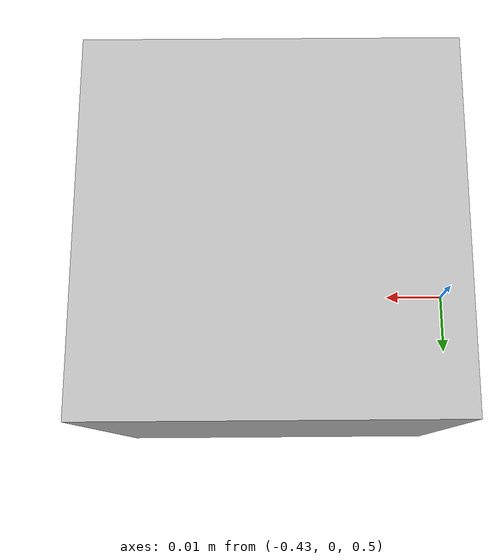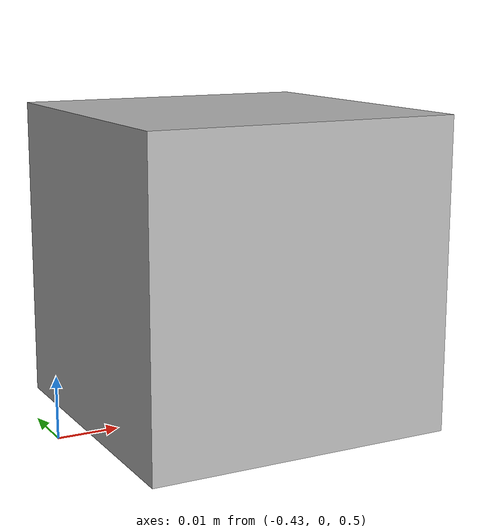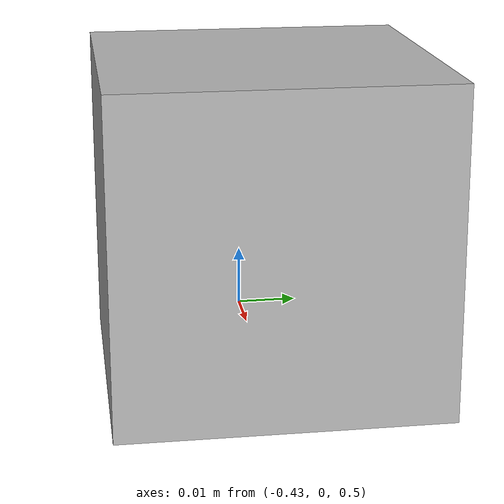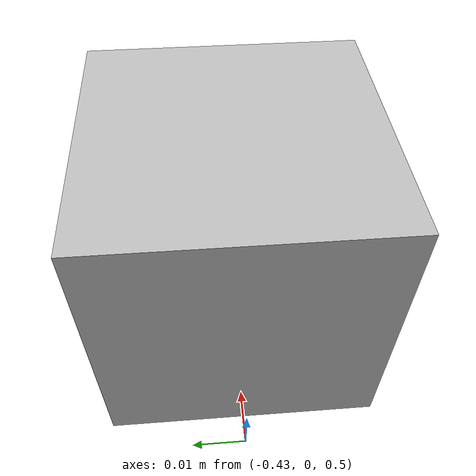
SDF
<?xml version="1.0"?>
<sdf version="1.9">
  <world name="carry">
    <physics name="default" type="ignored">
      <!-- The same step the generated world uses. Contact behaviour depends on
           it, so a test that proves carrying at a different step proves it for a
           simulator nobody runs. -->
      <max_step_size>0.001</max_step_size>
      <real_time_factor>0</real_time_factor>
    </physics>

    <plugin filename="gz-sim-physics-system" name="gz::sim::systems::Physics"/>

    <plugin filename="cite_conveyor" name="cite_simulation::Conveyor">
      <surface_pose>0 0 0.5 0 0 0</surface_pose>
      <belt_length_m>1.0</belt_length_m>
      <belt_width_m>0.4</belt_width_m>
      <carry_height_m>0.05</carry_height_m>
      <direction>forward</direction>
      <installed_speed_mps>0.15</installed_speed_mps>
      <command_topic>/test/belt/command</command_topic>
      <state_topic>/test/belt/state</state_topic>
      <publish_period_s>0.1</publish_period_s>
      <carry>workpiece</carry>
    </plugin>

    <plugin filename="cite_break_beam" name="cite_simulation::BreakBeam">
      <beam_pose>0.3 0.25 0.53 0 0 0</beam_pose>
      <beam_axis>y</beam_axis>
      <beam_length_m>0.5</beam_length_m>
      <beam_width_m>0.004</beam_width_m>
      <beam_offset_m>-0.25</beam_offset_m>
      <state_topic>/test/beam/detection</state_topic>
      <publish_period_s>0.1</publish_period_s>
      <watch>workpiece</watch>
    </plugin>

    <plugin filename="cite_break_beam" name="cite_simulation::BreakBeam">
      <beam_pose>-0.1 0.25 0.65 0 0 0</beam_pose>
      <beam_axis>y</beam_axis>
      <beam_length_m>0.5</beam_length_m>
      <beam_width_m>0.004</beam_width_m>
      <beam_offset_m>-0.25</beam_offset_m>
      <state_topic>/test/beam_high/detection</state_topic>
      <publish_period_s>0.1</publish_period_s>
      <watch>workpiece</watch>
    </plugin>

    <light type="directional" name="sun">
      <diffuse>0.8 0.8 0.8 1</diffuse>
      <direction>-0.5 0.1 -0.9</direction>
    </light>

    <model name="ground_plane">
      <static>true</static>
      <link name="link">
        <collision name="collision">
          <geometry><plane><normal>0 0 1</normal><size>20 20</size></plane></geometry>
        </collision>
      </link>
    </model>

    <model name="cell_scene">
      <static>true</static>
      <link name="cite_world">
        <collision name="belt">
          <pose>0 0 0.25 0 0 0</pose>
          <geometry><box><size>1.0 0.4 0.5</size></box></geometry>
        </collision>
      </link>
    </model>

    <!-- A 50 mm cube resting on the belt, near its trailing end. -->
    <model name="workpiece">
      <pose>-0.4 0 0.5251 0 0 0</pose>
      <link name="body">
        <inertial>
          <mass>0.2</mass>
          <inertia>
            <ixx>0.000083333</ixx><ixy>0</ixy><ixz>0</ixz>
            <iyy>0.000083333</iyy><iyz>0</iyz>
            <izz>0.000083333</izz>
          </inertia>
        </inertial>
        <collision name="collision">
          <geometry><box><size>0.05 0.05 0.05</size></box></geometry>
        </collision>
        <visual name="visual">
          <geometry><box><size>0.05 0.05 0.05</size></box></geometry>
        </visual>
      </link>
    </model>
  </world>
</sdf>
